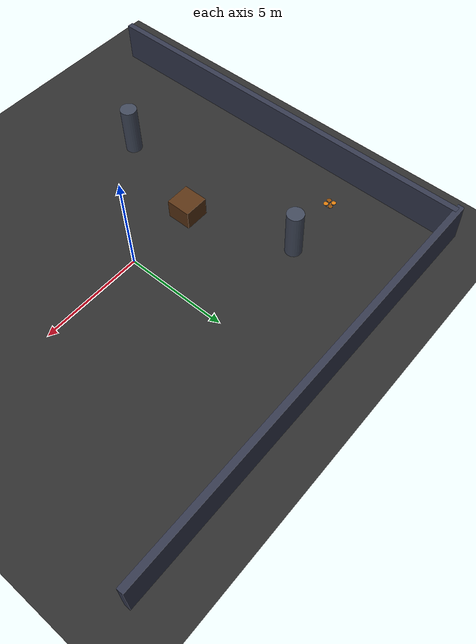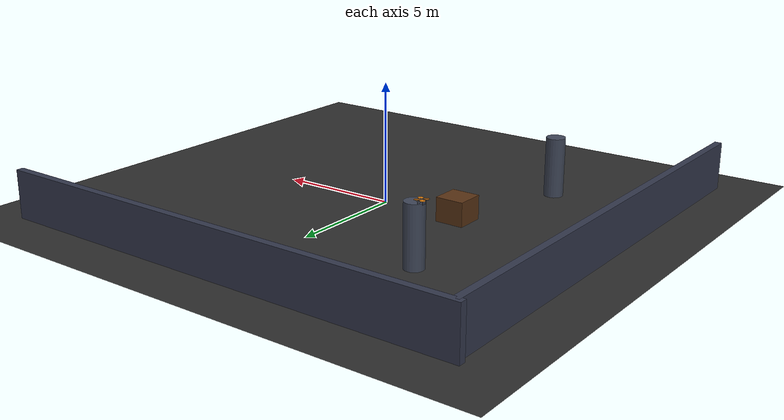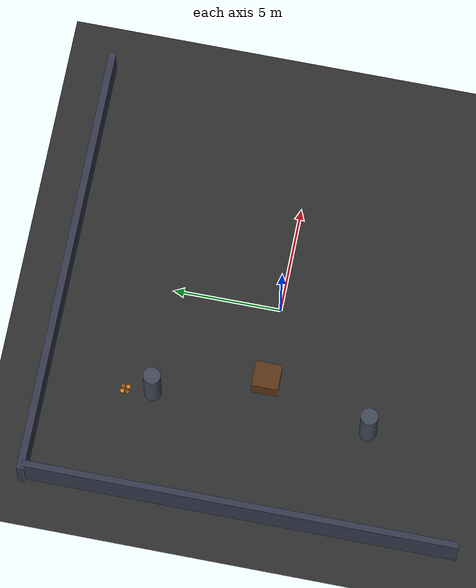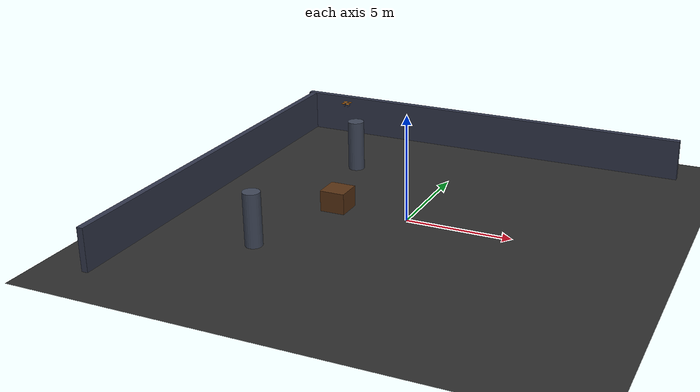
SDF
<sdf version="1.8">
 <world name="c2_arena">
  <model name="ground_plane">
   <static>true</static>
   <link name="link">
    <collision name="collision">
     <geometry><plane><normal>0 0 1</normal><size>100 100</size></plane></geometry>
     <surface><friction><ode><mu>0.8</mu><mu2>0.8</mu2></ode></friction></surface>
    </collision>
    <visual name="visual">
     <geometry><plane><normal>0 0 1</normal><size>100 100</size></plane></geometry>
     <material><ambient>0.18 0.18 0.18 1</ambient><diffuse>0.18 0.18 0.18 1</diffuse></material>
    </visual>
   </link>
  </model>
  <model name="wall_north">
   <static>true</static>
   <pose>0 10 1.0 0 0 0</pose>
   <link name="link">
    <collision name="c"><geometry><box><size>20.6 0.3 2.0</size></box></geometry></collision>
    <visual name="v">
     <geometry><box><size>20.6 0.3 2.0</size></box></geometry>
     <material><ambient>0.20 0.22 0.30 1</ambient><diffuse>0.20 0.22 0.30 1</diffuse></material>
    </visual>
   </link>
  </model>
  <model name="wall_west">
   <static>true</static>
   <pose>-10 0 1.0 0 0 0</pose>
   <link name="link">
    <collision name="c"><geometry><box><size>0.3 20.0 2.0</size></box></geometry></collision>
    <visual name="v">
     <geometry><box><size>0.3 20.0 2.0</size></box></geometry>
     <material><ambient>0.20 0.22 0.30 1</ambient><diffuse>0.20 0.22 0.30 1</diffuse></material>
    </visual>
   </link>
  </model>
  <model name="pillar_np">
   <static>true</static>
   <pose>-5 5 1.25 0 0 0</pose>
   <link name="link">
    <collision name="c">
     <geometry><cylinder><radius>0.4</radius><length>2.5</length></cylinder></geometry>
    </collision>
    <visual name="v">
     <geometry><cylinder><radius>0.4</radius><length>2.5</length></cylinder></geometry>
     <material><ambient>0.25 0.28 0.35 1</ambient><diffuse>0.25 0.28 0.35 1</diffuse></material>
    </visual>
   </link>
  </model>
  <model name="pillar_nn">
   <static>true</static>
   <pose>-5 -5 1.25 0 0 0</pose>
   <link name="link">
    <collision name="c">
     <geometry><cylinder><radius>0.4</radius><length>2.5</length></cylinder></geometry>
    </collision>
    <visual name="v">
     <geometry><cylinder><radius>0.4</radius><length>2.5</length></cylinder></geometry>
     <material><ambient>0.25 0.28 0.35 1</ambient><diffuse>0.25 0.28 0.35 1</diffuse></material>
    </visual>
   </link>
  </model>
  <model name="obs_west">
   <static>true</static>
   <pose>-3.5 0 0.5 0 0 0</pose>
   <link name="link">
    <collision name="c"><geometry><box><size>1.2 1.2 1.0</size></box></geometry></collision>
    <visual name="v">
     <geometry><box><size>1.2 1.2 1.0</size></box></geometry>
     <material><ambient>0.35 0.20 0.08 1</ambient><diffuse>0.35 0.20 0.08 1</diffuse></material>
    </visual>
   </link>
  </model>
  <model name="drone1">
   <pose>-6 6 3.0 0 0 0</pose>
   <link name="base_link">
    <gravity>false</gravity>
    <inertial>
     <mass>1.5</mass>
     <inertia><ixx>0.04</ixx><ixy>0</ixy><ixz>0</ixz><iyy>0.04</iyy><iyz>0</iyz><izz>0.07</izz></inertia>
    </inertial>
    <collision name="body_col"><geometry><box><size>0.45 0.45 0.10</size></box></geometry></collision>
    <visual name="arm_a">
     <pose>0 0 -0.005 0 0 0.785398</pose>
     <geometry><box><size>0.330 0.036 0.020</size></box></geometry>
     <material>
      <ambient>0.20 0.20 0.22 1</ambient>
      <diffuse>0.20 0.20 0.22 1</diffuse>
      <specular>0.40 0.40 0.42 1</specular>
     </material>
    </visual>
    <visual name="arm_b">
     <pose>0 0 -0.005 0 0 -0.785398</pose>
     <geometry><box><size>0.330 0.036 0.020</size></box></geometry>
     <material>
      <ambient>0.20 0.20 0.22 1</ambient>
      <diffuse>0.20 0.20 0.22 1</diffuse>
      <specular>0.40 0.40 0.42 1</specular>
     </material>
    </visual>
    <visual name="hub_disc">
     <geometry><cylinder><radius>0.075</radius><length>0.040</length></cylinder></geometry>
     <material>
      <ambient>0.18 0.18 0.20 1</ambient>
      <diffuse>0.18 0.18 0.20 1</diffuse>
      <specular>0.50 0.50 0.52 1</specular>
     </material>
    </visual>
    <visual name="hub_ring">
     <pose>0 0 0.022 0 0 0</pose>
     <geometry><cylinder><radius>0.068</radius><length>0.005</length></cylinder></geometry>
     <material>
      <ambient>0.85 0.48 0.05 1</ambient>
      <diffuse>0.85 0.48 0.05 1</diffuse>
      <specular>0.90 0.65 0.20 1</specular>
     </material>
    </visual>
    <visual name="battery">
     <pose>0 0 0.038 0 0 0</pose>
     <geometry><box><size>0.140 0.044 0.030</size></box></geometry>
     <material>
      <ambient>0.12 0.12 0.14 1</ambient>
      <diffuse>0.12 0.12 0.14 1</diffuse>
      <specular>0.30 0.30 0.30 1</specular>
     </material>
    </visual>
    <visual name="motor_fr">
     <pose>0.117 -0.117 0.014 0 0 0</pose>
     <geometry><cylinder><radius>0.024</radius><length>0.034</length></cylinder></geometry>
     <material>
      <ambient>0.14 0.14 0.16 1</ambient>
      <diffuse>0.14 0.14 0.16 1</diffuse>
      <specular>0.60 0.60 0.62 1</specular>
     </material>
    </visual>
    <visual name="motor_fl">
     <pose>0.117  0.117 0.014 0 0 0</pose>
     <geometry><cylinder><radius>0.024</radius><length>0.034</length></cylinder></geometry>
     <material>
      <ambient>0.14 0.14 0.16 1</ambient>
      <diffuse>0.14 0.14 0.16 1</diffuse>
      <specular>0.60 0.60 0.62 1</specular>
     </material>
    </visual>
    <visual name="motor_br">
     <pose>-0.117 -0.117 0.014 0 0 0</pose>
     <geometry><cylinder><radius>0.024</radius><length>0.034</length></cylinder></geometry>
     <material>
      <ambient>0.14 0.14 0.16 1</ambient>
      <diffuse>0.14 0.14 0.16 1</diffuse>
      <specular>0.60 0.60 0.62 1</specular>
     </material>
    </visual>
    <visual name="motor_bl">
     <pose>-0.117  0.117 0.014 0 0 0</pose>
     <geometry><cylinder><radius>0.024</radius><length>0.034</length></cylinder></geometry>
     <material>
      <ambient>0.14 0.14 0.16 1</ambient>
      <diffuse>0.14 0.14 0.16 1</diffuse>
      <specular>0.60 0.60 0.62 1</specular>
     </material>
    </visual>
    <visual name="prop_fr">
     <pose>0.117 -0.117 0.038 0 0 0</pose>
     <geometry><cylinder><radius>0.100</radius><length>0.006</length></cylinder></geometry>
     <material>
      <ambient>0.85 0.48 0.05 1</ambient>
      <diffuse>0.85 0.48 0.05 1</diffuse>
      <specular>0.70 0.50 0.15 1</specular>
     </material>
    </visual>
    <visual name="prop_bl">
     <pose>-0.117  0.117 0.038 0 0 0</pose>
     <geometry><cylinder><radius>0.100</radius><length>0.006</length></cylinder></geometry>
     <material>
      <ambient>0.85 0.48 0.05 1</ambient>
      <diffuse>0.85 0.48 0.05 1</diffuse>
      <specular>0.70 0.50 0.15 1</specular>
     </material>
    </visual>
    <visual name="prop_fl">
     <pose>0.117  0.117 0.038 0 0 0</pose>
     <geometry><cylinder><radius>0.100</radius><length>0.006</length></cylinder></geometry>
     <material>
      <ambient>0.55 0.30 0.04 1</ambient>
      <diffuse>0.55 0.30 0.04 1</diffuse>
      <specular>0.45 0.30 0.10 1</specular>
     </material>
    </visual>
    <visual name="prop_br">
     <pose>-0.117 -0.117 0.038 0 0 0</pose>
     <geometry><cylinder><radius>0.100</radius><length>0.006</length></cylinder></geometry>
     <material>
      <ambient>0.55 0.30 0.04 1</ambient>
      <diffuse>0.55 0.30 0.04 1</diffuse>
      <specular>0.45 0.30 0.10 1</specular>
     </material>
    </visual>
    <visual name="gimbal_arm">
     <pose>0.110 0 -0.046 0 0 0</pose>
     <geometry><cylinder><radius>0.006</radius><length>0.072</length></cylinder></geometry>
     <material><ambient>0.20 0.20 0.22 1</ambient><diffuse>0.20 0.20 0.22 1</diffuse></material>
    </visual>
    <visual name="cam_body">
     <pose>0.140 0 -0.072 0 0 0</pose>
     <geometry><box><size>0.038 0.040 0.036</size></box></geometry>
     <material>
      <ambient>0.06 0.06 0.07 1</ambient>
      <diffuse>0.06 0.06 0.07 1</diffuse>
      <specular>0.60 0.60 0.60 1</specular>
     </material>
    </visual>
    <visual name="cam_lens">
     <pose>0.160 0 -0.072 0 1.5707963 0</pose>
     <geometry><cylinder><radius>0.013</radius><length>0.010</length></cylinder></geometry>
     <material>
      <ambient>0.02 0.02 0.02 1</ambient>
      <diffuse>0.02 0.02 0.02 1</diffuse>
      <specular>0.95 0.95 0.95 1</specular>
     </material>
    </visual>
    <visual name="leg_fr">
     <pose>0.100 -0.100 -0.076 0 0 0</pose>
     <geometry><cylinder><radius>0.005</radius><length>0.100</length></cylinder></geometry>
     <material><ambient>0.22 0.22 0.24 1</ambient><diffuse>0.22 0.22 0.24 1</diffuse></material>
    </visual>
    <visual name="leg_fl">
     <pose>0.100  0.100 -0.076 0 0 0</pose>
     <geometry><cylinder><radius>0.005</radius><length>0.100</length></cylinder></geometry>
     <material><ambient>0.22 0.22 0.24 1</ambient><diffuse>0.22 0.22 0.24 1</diffuse></material>
    </visual>
    <visual name="leg_br">
     <pose>-0.100 -0.100 -0.076 0 0 0</pose>
     <geometry><cylinder><radius>0.005</radius><length>0.100</length></cylinder></geometry>
     <material><ambient>0.22 0.22 0.24 1</ambient><diffuse>0.22 0.22 0.24 1</diffuse></material>
    </visual>
    <visual name="leg_bl">
     <pose>-0.100  0.100 -0.076 0 0 0</pose>
     <geometry><cylinder><radius>0.005</radius><length>0.100</length></cylinder></geometry>
     <material><ambient>0.22 0.22 0.24 1</ambient><diffuse>0.22 0.22 0.24 1</diffuse></material>
    </visual>
    <visual name="skid_front">
     <pose>0.100 0 -0.124 0 0 0</pose>
     <geometry><box><size>0.010 0.230 0.008</size></box></geometry>
     <material><ambient>0.22 0.22 0.24 1</ambient><diffuse>0.22 0.22 0.24 1</diffuse></material>
    </visual>
    <visual name="skid_rear">
     <pose>-0.100 0 -0.124 0 0 0</pose>
     <geometry><box><size>0.010 0.230 0.008</size></box></geometry>
     <material><ambient>0.22 0.22 0.24 1</ambient><diffuse>0.22 0.22 0.24 1</diffuse></material>
    </visual>
    <sensor name="front_camera" type="camera">
     <pose>0.25 0 0.0 0 0.2 0</pose>
     <camera>
      <horizontal_fov>0.9</horizontal_fov>
      <image><width>640</width><height>480</height><format>R8G8B8</format></image>
      <clip><near>0.1</near><far>80</far></clip>
     </camera>
     <always_on>true</always_on>
     <update_rate>30</update_rate>
     <topic>/drone1/camera/image_raw</topic>
     <visualize>false</visualize>
    </sensor>
   </link>
   <plugin filename="gz-sim-velocity-control-system" name="gz::sim::systems::VelocityControl">
    <topic>/drone1/cmd_vel</topic>
    <initial_linear>0 0 0</initial_linear>
    <initial_angular>0 0 0</initial_angular>
   </plugin>
   <plugin filename="gz-sim-odometry-publisher-system" name="gz::sim::systems::OdometryPublisher">
    <odom_topic>/drone1/odom</odom_topic>
    <robot_base_frame>drone1/base_link</robot_base_frame>
    <odom_publish_frequency>10</odom_publish_frequency>
    <dimensions>3</dimensions>
   </plugin>
  </model>
 </world>
</sdf>
